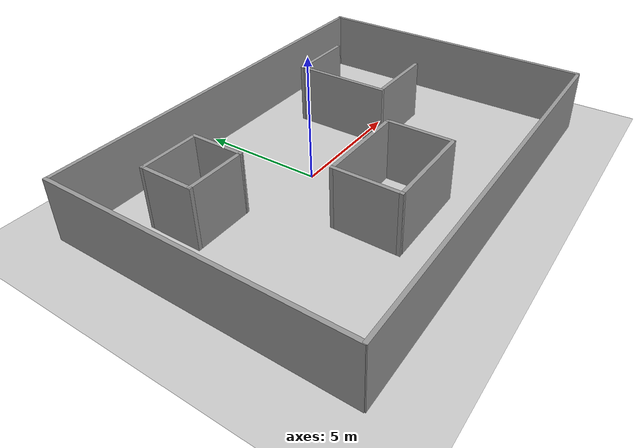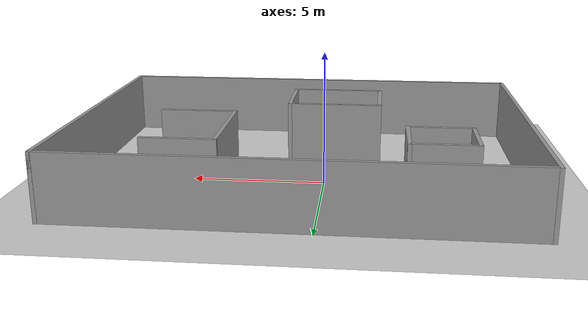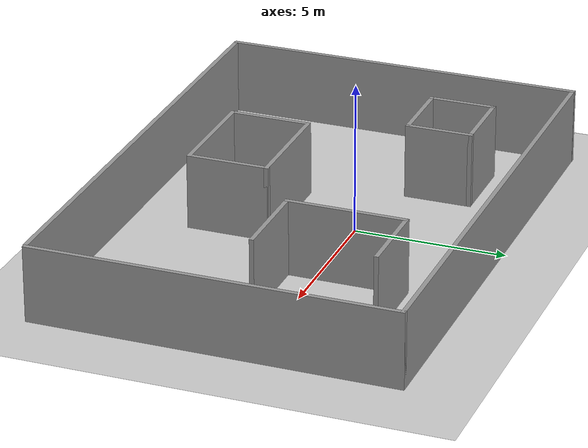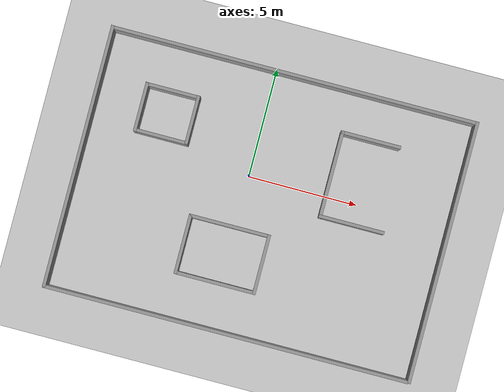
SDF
<sdf version="1.7">
 <world name="default">
  <light name="sun" type="directional">
   <pose>0 0 10 0 -0 0</pose>
   <diffuse>0.8 0.8 0.8 1</diffuse>
   <specular>0.2 0.2 0.2 1</specular>
   <attenuation>
    <range>1000</range>
    <constant>0.9</constant>
    <linear>0.01</linear>
    <quadratic>0.001</quadratic>
   </attenuation>
   <direction>-0.5 0.1 -0.9</direction>
   <spot><inner_angle>0</inner_angle><outer_angle>0</outer_angle><falloff>0</falloff></spot>
  </light>
  <model name="ground_plane">
   <static>1</static>
   <link name="link">
    <collision name="collision">
     <geometry><plane><normal>0 0 1</normal><size>100 100</size></plane></geometry>
     <surface>
      <contact><collide_bitmask>65535</collide_bitmask></contact>
      <friction><ode><mu>100</mu><mu2>50</mu2></ode></friction>
     </surface>
    </collision>
    <visual name="visual">
     <cast_shadows>0</cast_shadows>
     <geometry><plane><normal>0 0 1</normal><size>100 100</size></plane></geometry>
     <material>
      <script><uri>file://media/materials/scripts/gazebo.material</uri><name>Gazebo/Grey</name></script>
     </material>
    </visual>
   </link>
  </model>
  <gravity>0 0 -9.8</gravity>
  <magnetic_field>6e-06 2.3e-05 -4.2e-05</magnetic_field>
  <atmosphere type="adiabatic"/>
  <physics type="ode">
   <max_step_size>0.001</max_step_size>
   <real_time_factor>1</real_time_factor>
   <real_time_update_rate>1000</real_time_update_rate>
  </physics>
  <scene><ambient>0.4 0.4 0.4 1</ambient><background>0.7 0.7 0.7 1</background><shadows>1</shadows></scene>
  <spherical_coordinates>
   <surface_model>EARTH_WGS84</surface_model>
   <latitude_deg>0</latitude_deg>
   <longitude_deg>0</longitude_deg>
   <elevation>0</elevation>
   <heading_deg>0</heading_deg>
  </spherical_coordinates>
  <model name="3object">
   <pose>0.847228 -1.10804 0 0 -0 0</pose>
   <link name="Wall_0">
    <collision name="Wall_0_Collision">
     <geometry><box><size>12 0.15 2.5</size></box></geometry>
     <pose>0 0 1.25 0 -0 0</pose>
    </collision>
    <visual name="Wall_0_Visual">
     <pose>0 0 1.25 0 -0 0</pose>
     <geometry><box><size>12 0.15 2.5</size></box></geometry>
     <material>
      <script><uri>file://media/materials/scripts/gazebo.material</uri><name>Gazebo/Grey</name></script>
      <ambient>1 1 1 1</ambient>
     </material>
     <meta><layer>0</layer></meta>
    </visual>
    <pose>-8.3695 0.018719 0 0 -0 -1.5708</pose>
   </link>
   <link name="Wall_17">
    <collision name="Wall_17_Collision">
     <geometry><box><size>2.25 0.15 2.5</size></box></geometry>
     <pose>0 0 1.25 0 -0 0</pose>
    </collision>
    <visual name="Wall_17_Visual">
     <pose>0 0 1.25 0 -0 0</pose>
     <geometry><box><size>2.25 0.15 2.5</size></box></geometry>
     <material>
      <script><uri>file://media/materials/scripts/gazebo.material</uri><name>Gazebo/Grey</name></script>
      <ambient>1 1 1 1</ambient>
     </material>
     <meta><layer>0</layer></meta>
    </visual>
    <pose>-6.24223 2.84432 0 0 -0 -1.5708</pose>
   </link>
   <link name="Wall_18">
    <collision name="Wall_18_Collision">
     <geometry><box><size>2.5 0.15 2.5</size></box></geometry>
     <pose>0 0 1.25 0 -0 0</pose>
    </collision>
    <visual name="Wall_18_Visual">
     <pose>0 0 1.25 0 -0 0</pose>
     <geometry><box><size>2.5 0.15 2.5</size></box></geometry>
     <material>
      <script><uri>file://media/materials/scripts/gazebo.material</uri><name>Gazebo/Grey</name></script>
      <ambient>1 1 1 1</ambient>
     </material>
     <meta><layer>0</layer></meta>
    </visual>
    <pose>-5.06723 1.79432 0 0 -0 0</pose>
   </link>
   <link name="Wall_19">
    <collision name="Wall_19_Collision">
     <geometry><box><size>2.25 0.15 2.5</size></box></geometry>
     <pose>0 0 1.25 0 -0 0</pose>
    </collision>
    <visual name="Wall_19_Visual">
     <pose>0 0 1.25 0 -0 0</pose>
     <geometry><box><size>2.25 0.15 2.5</size></box></geometry>
     <material>
      <script><uri>file://media/materials/scripts/gazebo.material</uri><name>Gazebo/Grey</name></script>
      <ambient>1 1 1 1</ambient>
     </material>
     <meta><layer>0</layer></meta>
    </visual>
    <pose>-3.89223 2.84432 0 0 -0 1.5708</pose>
   </link>
   <link name="Wall_2">
    <collision name="Wall_2_Collision">
     <geometry><box><size>16.75 0.15 2.5</size></box></geometry>
     <pose>0 0 1.25 0 -0 0</pose>
    </collision>
    <visual name="Wall_2_Visual">
     <pose>0 0 1.25 0 -0 0</pose>
     <geometry><box><size>16.75 0.15 2.5</size></box></geometry>
     <material>
      <script><uri>file://media/materials/scripts/gazebo.material</uri><name>Gazebo/Grey</name></script>
      <ambient>1 1 1 1</ambient>
     </material>
     <meta><layer>0</layer></meta>
    </visual>
    <pose>0.069502 5.93935 0 0 -0 0</pose>
   </link>
   <link name="Wall_20">
    <collision name="Wall_20_Collision">
     <geometry><box><size>2.5 0.15 2.5</size></box></geometry>
     <pose>0 0 1.25 0 -0 0</pose>
    </collision>
    <visual name="Wall_20_Visual">
     <pose>0 0 1.25 0 -0 0</pose>
     <geometry><box><size>2.5 0.15 2.5</size></box></geometry>
     <material>
      <script><uri>file://media/materials/scripts/gazebo.material</uri><name>Gazebo/Grey</name></script>
      <ambient>1 1 1 1</ambient>
     </material>
     <meta><layer>0</layer></meta>
    </visual>
    <pose>-5.06723 3.89432 0 0 -0 3.14159</pose>
   </link>
   <link name="Wall_23">
    <collision name="Wall_23_Collision">
     <geometry><box><size>2.75 0.15 2.5</size></box></geometry>
     <pose>0 0 1.25 0 -0 0</pose>
    </collision>
    <visual name="Wall_23_Visual">
     <pose>0 0 1.25 0 -0 0</pose>
     <geometry><box><size>2.75 0.15 2.5</size></box></geometry>
     <material>
      <script><uri>file://media/materials/scripts/gazebo.material</uri><name>Gazebo/Grey</name></script>
      <ambient>1 1 1 1</ambient>
     </material>
     <meta><layer>0</layer></meta>
    </visual>
    <pose>3.99018 4.02999 0 0 -0 3.14159</pose>
   </link>
   <link name="Wall_24">
    <collision name="Wall_24_Collision">
     <geometry><box><size>4 0.15 2.5</size></box></geometry>
     <pose>0 0 1.25 0 -0 0</pose>
    </collision>
    <visual name="Wall_24_Visual">
     <pose>0 0 1.25 0 -0 0</pose>
     <geometry><box><size>4 0.15 2.5</size></box></geometry>
     <material>
      <script><uri>file://media/materials/scripts/gazebo.material</uri><name>Gazebo/Grey</name></script>
      <ambient>1 1 1 1</ambient>
     </material>
     <meta><layer>0</layer></meta>
    </visual>
    <pose>2.69019 2.10499 0 0 -0 -1.5708</pose>
   </link>
   <link name="Wall_25">
    <collision name="Wall_25_Collision">
     <geometry><box><size>3 0.15 2.5</size></box></geometry>
     <pose>0 0 1.25 0 -0 0</pose>
    </collision>
    <visual name="Wall_25_Visual">
     <pose>0 0 1.25 0 -0 0</pose>
     <geometry><box><size>3 0.15 2.5</size></box></geometry>
     <material>
      <script><uri>file://media/materials/scripts/gazebo.material</uri><name>Gazebo/Grey</name></script>
      <ambient>1 1 1 1</ambient>
     </material>
     <meta><layer>0</layer></meta>
    </visual>
    <pose>4.11519 0.179991 0 0 -0 0</pose>
   </link>
   <link name="Wall_27">
    <collision name="Wall_27_Collision">
     <geometry><box><size>2.75 0.15 2.5</size></box></geometry>
     <pose>0 0 1.25 0 -0 0</pose>
    </collision>
    <visual name="Wall_27_Visual">
     <pose>0 0 1.25 0 -0 0</pose>
     <geometry><box><size>2.75 0.15 2.5</size></box></geometry>
     <material>
      <script><uri>file://media/materials/scripts/gazebo.material</uri><name>Gazebo/Grey</name></script>
      <ambient>1 1 1 1</ambient>
     </material>
     <meta><layer>0</layer></meta>
    </visual>
    <pose>-2.88426 -2.56135 0 0 -0 -1.5708</pose>
   </link>
   <link name="Wall_28">
    <collision name="Wall_28_Collision">
     <geometry><box><size>3.75 0.15 2.5</size></box></geometry>
     <pose>0 0 1.25 0 -0 0</pose>
    </collision>
    <visual name="Wall_28_Visual">
     <pose>0 0 1.25 0 -0 0</pose>
     <geometry><box><size>3.75 0.15 2.5</size></box></geometry>
     <material>
      <script><uri>file://media/materials/scripts/gazebo.material</uri><name>Gazebo/Grey</name></script>
      <ambient>1 1 1 1</ambient>
     </material>
     <meta><layer>0</layer></meta>
    </visual>
    <pose>-1.08427 -3.86135 0 0 -0 0</pose>
   </link>
   <link name="Wall_29">
    <collision name="Wall_29_Collision">
     <geometry><box><size>2.75 0.15 2.5</size></box></geometry>
     <pose>0 0 1.25 0 -0 0</pose>
    </collision>
    <visual name="Wall_29_Visual">
     <pose>0 0 1.25 0 -0 0</pose>
     <geometry><box><size>2.75 0.15 2.5</size></box></geometry>
     <material>
      <script><uri>file://media/materials/scripts/gazebo.material</uri><name>Gazebo/Grey</name></script>
      <ambient>1 1 1 1</ambient>
     </material>
     <meta><layer>0</layer></meta>
    </visual>
    <pose>0.715735 -2.56135 0 0 -0 1.5708</pose>
   </link>
   <link name="Wall_30">
    <collision name="Wall_30_Collision">
     <geometry><box><size>3.75 0.15 2.5</size></box></geometry>
     <pose>0 0 1.25 0 -0 0</pose>
    </collision>
    <visual name="Wall_30_Visual">
     <pose>0 0 1.25 0 -0 0</pose>
     <geometry><box><size>3.75 0.15 2.5</size></box></geometry>
     <material>
      <script><uri>file://media/materials/scripts/gazebo.material</uri><name>Gazebo/Grey</name></script>
      <ambient>1 1 1 1</ambient>
     </material>
     <meta><layer>0</layer></meta>
    </visual>
    <pose>-1.08427 -1.26135 0 0 -0 3.14159</pose>
   </link>
   <link name="Wall_4">
    <collision name="Wall_4_Collision">
     <geometry><box><size>12 0.15 2.5</size></box></geometry>
     <pose>0 0 1.25 0 -0 0</pose>
    </collision>
    <visual name="Wall_4_Visual">
     <pose>0 0 1.25 0 -0 0</pose>
     <geometry><box><size>12 0.15 2.5</size></box></geometry>
     <material>
      <script><uri>file://media/materials/scripts/gazebo.material</uri><name>Gazebo/Grey</name></script>
      <ambient>1 1 1 1</ambient>
     </material>
     <meta><layer>0</layer></meta>
    </visual>
    <pose>8.3695 0.014351 0 0 -0 -1.5708</pose>
   </link>
   <link name="Wall_6">
    <collision name="Wall_6_Collision">
     <geometry><box><size>16.75 0.15 2.5</size></box></geometry>
     <pose>0 0 1.25 0 -0 0</pose>
    </collision>
    <visual name="Wall_6_Visual">
     <pose>0 0 1.25 0 -0 0</pose>
     <geometry><box><size>16.75 0.15 2.5</size></box></geometry>
     <material>
      <script><uri>file://media/materials/scripts/gazebo.material</uri><name>Gazebo/Grey</name></script>
      <ambient>1 1 1 1</ambient>
     </material>
     <meta><layer>0</layer></meta>
    </visual>
    <pose>-0.044503 -5.94372 0 0 -0 0</pose>
   </link>
   <static>1</static>
  </model>
 </world>
</sdf>
